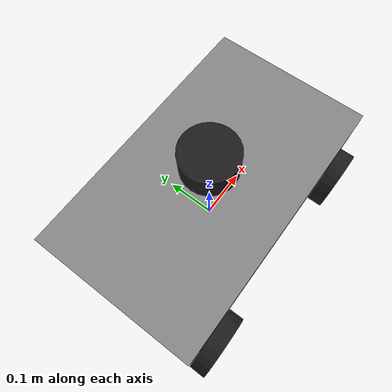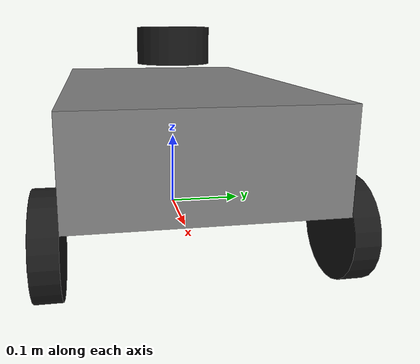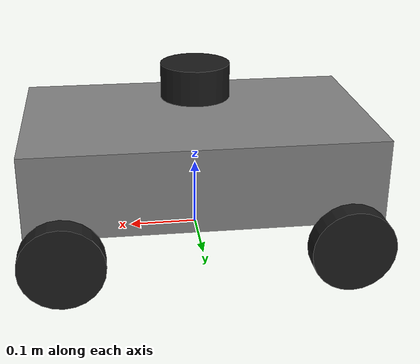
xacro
<?xml version="1.0"?>
<robot xmlns:xacro="http://www.ros.org/wiki/xacro" name="skid_steer_bot">
  <!-- Params -->
  <xacro:property name="base_l" value="0.50"/>   <!-- base length (m) -->
  <xacro:property name="base_w" value="0.30"/>   <!-- base width (m)  -->
  <xacro:property name="base_h" value="0.12"/>
  <xacro:property name="wheel_r" value="0.06"/>
  <xacro:property name="wheel_w" value="0.03"/>

  <!-- Base link -->
  <link name="base_link">
    <inertial>
      <origin xyz="0 0 0" rpy="0 0 0"/>
      <mass value="8.0"/>
      <inertia ixx="0.15" iyy="0.20" izz="0.25" ixy="0" ixz="0" iyz="0"/>
    </inertial>
    <visual>
      <origin xyz="0 0 ${wheel_r + base_h/2}" rpy="0 0 0"/>
      <geometry><box size="${base_l} ${base_w} ${base_h}"/></geometry>
      <material name="gray"><color rgba="0.5 0.5 0.5 1"/></material>
    </visual>
    <collision>
      <origin xyz="0 0 ${wheel_r + base_h/2}" rpy="0 0 0"/>
      <geometry><box size="${base_l} ${base_w} ${base_h}"/></geometry>
    </collision>
  </link>

  <!-- Wheel macro -->
  <xacro:macro name="wheel" params="name x y">
    <link name="${name}">
      <inertial>
        <origin xyz="0 0 0" rpy="0 0 0"/>
        <mass value="0.5"/>
        <inertia ixx="0.001" iyy="0.001" izz="0.001" ixy="0" ixz="0" iyz="0"/>
      </inertial>
      <visual>
        <origin xyz="0 0 0" rpy="1.5708 0 0"/>
        <geometry><cylinder radius="${wheel_r}" length="${wheel_w}"/></geometry>
        <material name="black"><color rgba="0.1 0.1 0.1 1"/></material>
      </visual>
      <collision>
        <origin xyz="0 0 0" rpy="1.5708 0 0"/>
        <geometry><cylinder radius="${wheel_r}" length="${wheel_w}"/></geometry>
      </collision>
    </link>
    <joint name="${name}_joint" type="continuous">
      <parent link="base_link"/>
      <child link="${name}"/>
      <origin xyz="${x} ${y} 0.03" rpy="0 0 0"/>
      <axis xyz="0 1 0"/>
    </joint>
  </xacro:macro>

  <!-- 4 wheels (FL, RL, FR, RR). Note left is +y, right is -y -->
  <xacro:wheel name="fl_wheel" x="${0.20}" y="${0.165}" />
  <xacro:wheel name="rl_wheel" x="${-0.2}" y="${0.165}" />
  <xacro:wheel name="fr_wheel" x="${0.20}" y="${-0.165}" />
  <xacro:wheel name="rr_wheel" x="${-0.2}" y="${-0.165}" />

  <gazebo reference="fl_wheel">
  <mu>1.5</mu>
  <mu2>1.5</mu2>
  <kp>1000000.0</kp>
  <kd>1000.0</kd>
  <minDepth>0.001</minDepth>
  <maxVel>0.2</maxVel>
  <slip1>0.0</slip1>
  <slip2>0.0</slip2>
</gazebo>
<gazebo reference="fr_wheel">
  <mu>1.5</mu><mu2>1.5</mu2><kp>1000000.0</kp><kd>1000.0</kd>
  <minDepth>0.001</minDepth><maxVel>0.2</maxVel><slip1>0.0</slip1><slip2>0.0</slip2>
</gazebo>
<gazebo reference="rl_wheel">
  <mu>1.5</mu><mu2>1.5</mu2><kp>1000000.0</kp><kd>1000.0</kd>
  <minDepth>0.001</minDepth><maxVel>0.2</maxVel><slip1>0.0</slip1><slip2>0.0</slip2>
</gazebo>
<gazebo reference="rr_wheel">
  <mu>1.5</mu><mu2>1.5</mu2><kp>1000000.0</kp><kd>1000.0</kd>
  <minDepth>0.001</minDepth><maxVel>0.2</maxVel><slip1>0.0</slip1><slip2>0.0</slip2>
</gazebo>

  <!-- ros2_control: diff drive using left and right wheel pairs -->
  <ros2_control name="GazeboSimSystem" type="system">
  <hardware>
    <plugin>gz_ros2_control/GazeboSimSystem</plugin>
  </hardware>

  <!-- wheel joints with interfaces -->
  <joint name="fl_wheel_joint">
    <command_interface name="velocity"/>
    <state_interface name="position"/>
    <state_interface name="velocity"/>
  </joint>
  <joint name="rl_wheel_joint">
    <command_interface name="velocity"/>
    <state_interface name="position"/>
    <state_interface name="velocity"/>
  </joint>
  <joint name="fr_wheel_joint">
    <command_interface name="velocity"/>
    <state_interface name="position"/>
    <state_interface name="velocity"/>
  </joint>
  <joint name="rr_wheel_joint">
    <command_interface name="velocity"/>
    <state_interface name="position"/>
    <state_interface name="velocity"/>
  </joint>
</ros2_control>

<gazebo>
  <plugin filename="libgz_ros2_control-system.so"
          name="gz_ros2_control::GazeboSimROS2ControlPlugin">
    <controller_manager_prefix_node_name>controller_manager</controller_manager_prefix_node_name>
    <parameters>/home/tersoo/autonomous-robot-logging-with-ROS2-jazzy/ros2_ws/src/robot_logging/config/controllers.yaml</parameters>
  </plugin>
</gazebo>

<!-- GPU LiDAR link -->
<link name="lidar_link">
  <inertial>
    <origin xyz="0 0 0" rpy="0 0 0"/>
    <mass value="0.1"/>
    <inertia ixx="0.0001" iyy="0.0001" izz="0.0001" ixy="0" ixz="0" iyz="0"/>
  </inertial>
  <visual>
    <origin xyz="0 0 0" rpy="0 0 0"/>
    <geometry>
      <cylinder radius="0.05" length="0.05"/>
    </geometry>
    <material name="black"><color rgba="0.1 0.1 0.1 1"/></material>
  </visual>
  <collision>
    <origin xyz="0 0 0" rpy="0 0 0"/>
    <geometry>
      <cylinder radius="0.05" length="0.05"/>
    </geometry>
  </collision>
</link>

<!-- Fixed joint from base to lidar -->
<joint name="lidar_joint" type="fixed">
  <parent link="base_link"/>
  <child link="lidar_link"/>
  <!-- Position above base by wheel radius + base height + 5 cm -->
  <origin xyz="0 0 ${wheel_r + base_h + 0.05}" rpy="0 0 0"/>
</joint>

<gazebo reference="lidar_link">
  <sensor name="gpu_lidar" type="gpu_lidar">
    <pose>0 0 0 0 0 0</pose>
    <update_rate>20</update_rate>
    <visualize>true</visualize>
    <topic>lidar_points</topic>
    <horizontal>
      <samples>720</samples>
      <resolution>1</resolution>
      <min_angle>-3.14159</min_angle>
      <max_angle>3.14159</max_angle>
    </horizontal>
    <vertical>
      <samples>1</samples>
      <resolution>1</resolution>
      <min_angle>0.0</min_angle>
      <max_angle>0.0</max_angle>
    </vertical>
    <range>
      <min>0.12</min>
      <max>12.0</max>
      <resolution>0.01</resolution>
    </range>
    <plugin name="gpu_lidar_plugin" filename="libgz-sim-gpu-lidar-system.so">
      <topic>/lidar_points</topic>
    </plugin>
  </sensor>
</gazebo>

</robot>
